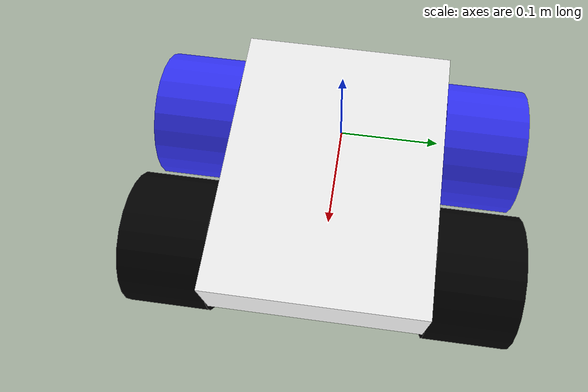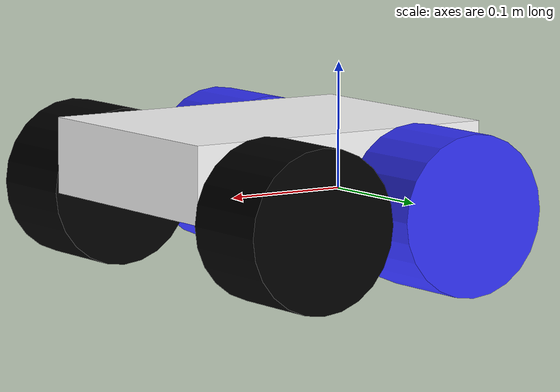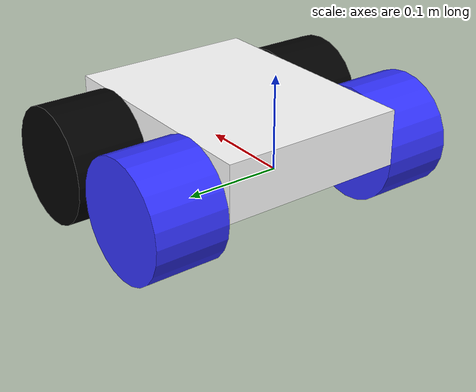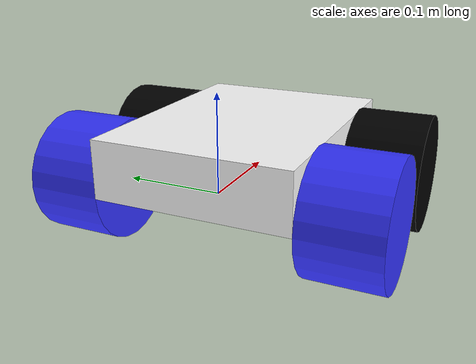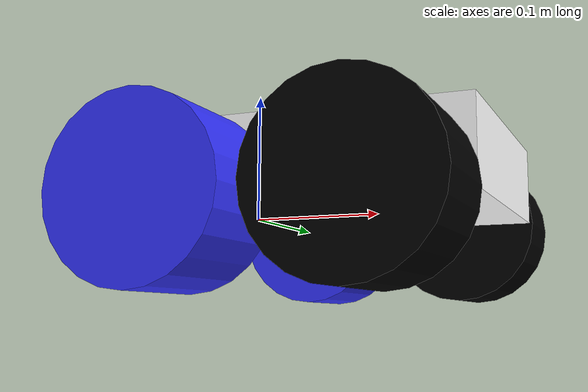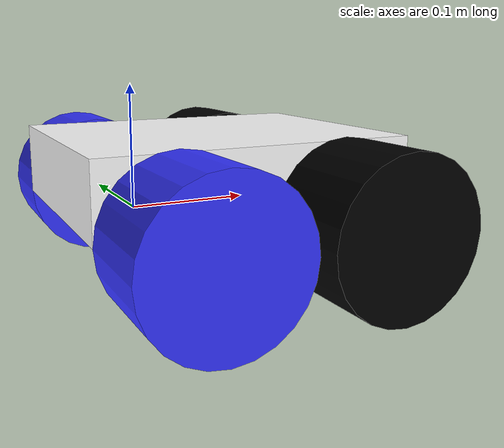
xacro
<?xml version="1.0"?>
<robot xmlns:xacro="http://www.ros.org/wiki/xacro">

    <xacro:include filename="inertial_macros.xacro"/>

    <material name="white">
        <color rgba="1 1 1 1"/>
    </material>

    <material name="orange">
        <color rgba="1 0.3 0.1 1"/>
    </material>

    <material name="blue">
        <color rgba="0.2 0.2 1 1"/>
    </material>

    <material name="black">
        <color rgba="0 0 0 1"/>
    </material>

    <!-- Base Link -->

    <link name="base_link">

    </link>

    <!-- BASE_FOOTPRINT LINK -->

    <joint name="base_footprint_joint" type="fixed">
        <parent link="base_link"/>
        <child link="base_footprint"/>
        <origin xyz="0 0 0" rpy="0 0 0"/>
    </joint>

    <link name="base_footprint">
    </link>

    <!-- Chassis -->

    <joint name="chassis_joint" type="fixed">
        <parent link="base_link"/>
        <child link="chassis"/>
        <origin xyz = "-0.0625 0 0"/>
    </joint>

    <link name="chassis">
        <visual>
            <origin xyz="0.13 0 0.03"/>
            <geometry>
                <box size="0.26 0.2 0.06"/>
            </geometry>
            <material name="white"/>
        </visual>
        <collision>
            <origin xyz="0.13 0 0.03"/>
            <geometry>
                <box size="0.26 0.2 0.06"/>
            </geometry>
        </collision>
        <xacro:inertial_box mass="2.0" x="0.26" y="0.2" z="0.06">
            <origin xyz="0.13 0 0.03" rpy="0 0 0"/>
        </xacro:inertial_box>
    </link>

    <gazebo reference="chassis">
        <material>Gazebo/White</material>
    </gazebo>

    <!--LEFT WHEEL -->

    <joint name="left_wheel_joint" type="continuous">
        <parent link="base_link"/>
        <child link="left_wheel"/>
        <origin xyz="0 0.13875 0" rpy="-${pi/2} 0 0"/>
        <axis xyz="0 0 1"/>
    </joint>

    <link name="left_wheel">
        <visual>
            <geometry>
                <cylinder radius="0.0625" length="0.0775"/>
            </geometry>
            <material name="blue"/>
        </visual>
        <collision>
            <geometry>
                <sphere radius="0.0625"/>
            </geometry>
        </collision>
        <xacro:inertial_cylinder mass="0.4" length="0.0775" radius="0.0625">
            <origin xyz="0 0 0" rpy="0 0 0"/>
        </xacro:inertial_cylinder>
    </link>

    <gazebo reference="left_wheel">
        <material>Gazebo/Blue</material>
    </gazebo>

    <!--RIGHT WHEEL -->

    <joint name="right_wheel_joint" type="continuous">
        <parent link="base_link"/>
        <child link="right_wheel"/>
        <origin xyz="0 -0.13875 0" rpy="${pi/2} 0 0"/>
        <axis xyz="0 0 -1"/>
    </joint>

    <link name="right_wheel">
        <visual>
            <geometry>
                <cylinder radius="0.0625" length="0.0775"/>
            </geometry>
            <material name="blue"/>
        </visual>
        <collision>
            <geometry>
                <sphere radius="0.0625"/>
            </geometry>
        </collision>
        <xacro:inertial_cylinder mass="0.4" length="0.0775" radius="0.0625">
            <origin xyz="0 0 0" rpy="0 0 0"/>
        </xacro:inertial_cylinder>
    </link>

    <gazebo reference="right_wheel">
        <material>Gazebo/Blue</material>
    </gazebo>

    <!-- Left Castor Wheel -->

    <joint name="left_castor_wheel_joint" type="fixed">
        <parent link="chassis"/>
        <child link="left_castor_wheel"/>
        <origin xyz="0.2 0.13875 0" rpy="-${pi/2} 0 0"/>
        <axis xyz="0 0 1"/>
    </joint>

    <link name="left_castor_wheel">
        <visual>
            <geometry>
                <cylinder radius="0.0625" length="0.0775"/>
            </geometry>
            <material name="black"/>
        </visual>
        <collision>
            <geometry>
                <cylinder radius="0.0625" length="0.0775"/>
            </geometry>
        </collision>
        <xacro:inertial_cylinder mass="0.4" length="0.0775" radius="0.0625">
            <origin xyz="0 0 0" rpy="0 0 0"/>
        </xacro:inertial_cylinder>
    </link>

    <gazebo reference="left_castor_wheel">
        <material>Gazebo/Black</material>
        <mu1 value="0.001"/>
        <mu2 value="0.001"/>
    </gazebo>

    <!-- Right Castor Wheel -->

    <joint name="right_castor_wheel_joint" type="fixed">
        <parent link="chassis"/>
        <child link="right_castor_wheel"/>
        <origin xyz="0.2 -0.13875 0" rpy="${pi/2} 0 0"/>
        <axis xyz="0 0 -1"/>
    </joint>

    <link name="right_castor_wheel">
        <visual>
            <geometry>
                <cylinder radius="0.0625" length="0.0775"/>
            </geometry>
            <material name="black"/>
        </visual>
        <collision>
            <geometry>
                <cylinder radius="0.0625" length="0.0775"/>
            </geometry>
        </collision>
        <xacro:inertial_cylinder mass="0.4" length="0.0775" radius="0.0625">
            <origin xyz="0 0 0" rpy="0 0 0"/>
        </xacro:inertial_cylinder>
    </link>

    <gazebo reference="right_castor_wheel">
        <material>Gazebo/Black</material>
        <mu1 value="0.001"/>
        <mu2 value="0.001"/>
    </gazebo>

</robot>
